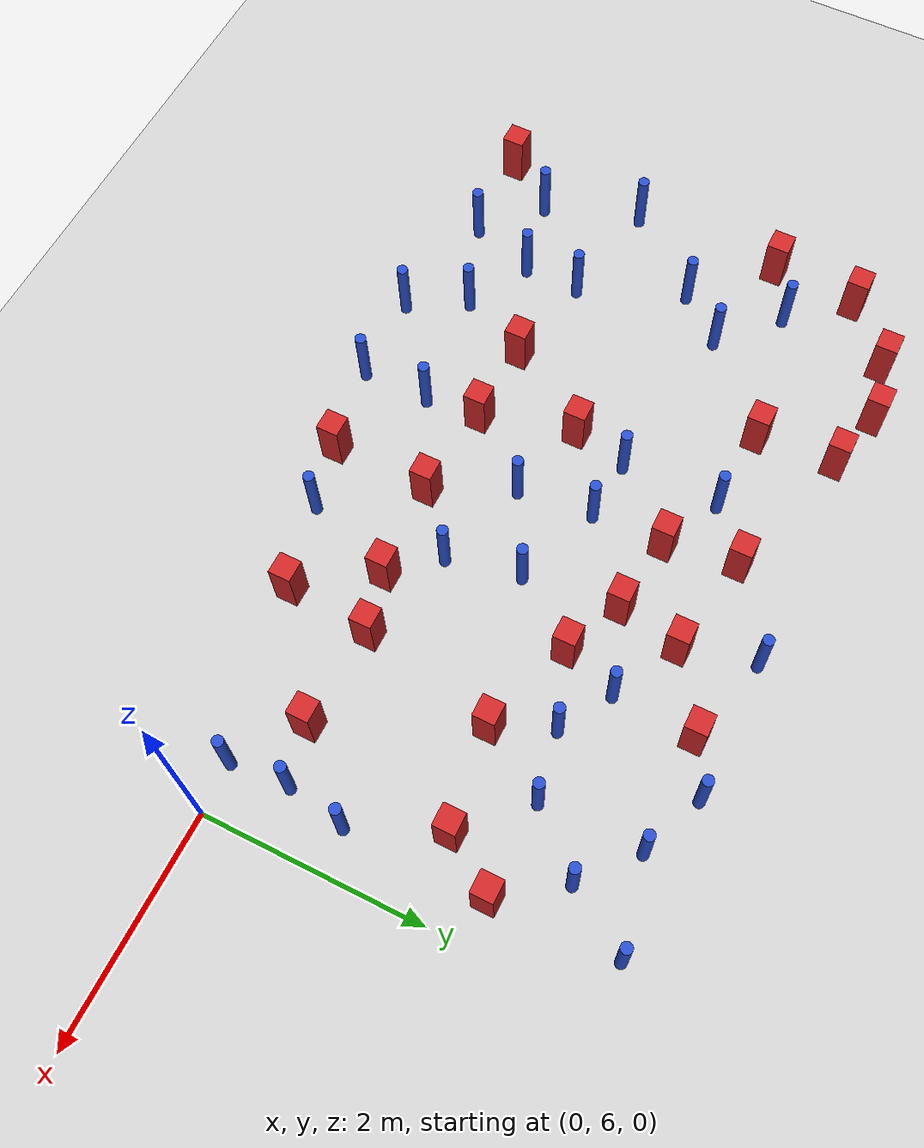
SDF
<sdf version="1.6">
 <world name="default">
  <model name="ground_plane">
   <static>1</static>
   <link name="link">
    <collision name="collision">
     <geometry><plane><normal>0 0 1</normal><size>100 100</size></plane></geometry>
     <surface><friction><ode><mu>100</mu><mu2>50</mu2></ode></friction></surface>
    </collision>
    <visual name="visual">
     <cast_shadows>0</cast_shadows>
     <geometry><plane><normal>0 0 1</normal><size>100 100</size></plane></geometry>
     <material>
      <ambient>1.0 1.0 1.0 1.0</ambient>
      <diffuse>0.8 0.8 0.8 1.0</diffuse>
      <specular>0.01 0.01 0.01 1.000000</specular>
     </material>
    </visual>
   </link>
  </model>
  <model name="square_post_obstacle6">
   <static>true</static>
   <pose>-3.72830438656 8.32323099162 1.91545236811e-07 -7.35059704564e-06 1.12565212e-07 2.39332434364e-05</pose>
   <link name="link">
    <pose>0 0 0.25 0 -0 0</pose>
    <inertial>
     <mass>100</mass>
     <inertia>
      <ixx>0.166667</ixx>
      <ixy>0</ixy>
      <ixz>0</ixz>
      <iyy>0.166667</iyy>
      <iyz>0</iyz>
      <izz>0.166667</izz>
     </inertia>
    </inertial>
    <collision name="collision"><geometry><box><size>.2 .2 .5</size></box></geometry></collision>
    <visual name="visual">
     <geometry><box><size>.2 .2 .5</size></box></geometry>
     <material>
      <script><name>Gazebo/Red</name><uri>file://media/materials/scripts/gazebo.material</uri></script>
     </material>
    </visual>
   </link>
  </model>
  <model name="pole_obstacle7">
   <static>true</static>
   <pose>-6.21380209291 7.48486006199 7.38925637345e-09 -8.47170692796e-08 1.24976764786e-08 -1.74513093032e-07</pose>
   <link name="link">
    <pose>0 0 0.3 0 -0 0</pose>
    <inertial>
     <mass>1</mass>
     <inertia><ixx>0.145833</ixx><ixy>0</ixy><ixz>0</ixz><iyy>0.145833</iyy><iyz>0</iyz><izz>0.125</izz></inertia>
    </inertial>
    <collision name="collision">
     <geometry><cylinder><radius>0.05</radius><length>.6</length></cylinder></geometry>
    </collision>
    <visual name="visual">
     <geometry><cylinder><radius>0.05</radius><length>.6</length></cylinder></geometry>
     <material>
      <script><name>Gazebo/Blue</name><uri>file://media/materials/scripts/gazebo.material</uri></script>
     </material>
    </visual>
   </link>
  </model>
  <model name="pole_obstacle9">
   <static>true</static>
   <pose>-5.82757588998 6.53122143702 7.38925637345e-09 -8.47170692796e-08 1.24976764786e-08 -1.74513093032e-07</pose>
   <link name="link">
    <pose>0 0 0.3 0 -0 0</pose>
    <inertial>
     <mass>1</mass>
     <inertia><ixx>0.145833</ixx><ixy>0</ixy><ixz>0</ixz><iyy>0.145833</iyy><iyz>0</iyz><izz>0.125</izz></inertia>
    </inertial>
    <collision name="collision">
     <geometry><cylinder><radius>0.05</radius><length>.6</length></cylinder></geometry>
    </collision>
    <visual name="visual">
     <geometry><cylinder><radius>0.05</radius><length>.6</length></cylinder></geometry>
     <material>
      <script><name>Gazebo/Blue</name><uri>file://media/materials/scripts/gazebo.material</uri></script>
     </material>
    </visual>
   </link>
  </model>
  <model name="square_post_obstacle17">
   <static>true</static>
   <pose>-2.2607761565 9.23892513766 1.91545236811e-07 -7.35059704564e-06 1.12565212e-07 2.39332434364e-05</pose>
   <link name="link">
    <pose>0 0 0.25 0 -0 0</pose>
    <inertial>
     <mass>100</mass>
     <inertia>
      <ixx>0.166667</ixx>
      <ixy>0</ixy>
      <ixz>0</ixz>
      <iyy>0.166667</iyy>
      <iyz>0</iyz>
      <izz>0.166667</izz>
     </inertia>
    </inertial>
    <collision name="collision"><geometry><box><size>.2 .2 .5</size></box></geometry></collision>
    <visual name="visual">
     <geometry><box><size>.2 .2 .5</size></box></geometry>
     <material>
      <script><name>Gazebo/Red</name><uri>file://media/materials/scripts/gazebo.material</uri></script>
     </material>
    </visual>
   </link>
  </model>
  <model name="square_post_obstacle18">
   <static>true</static>
   <pose>-0.710924107963 7.84707226629 1.91545236811e-07 -7.35059704564e-06 1.12565212e-07 2.39332434364e-05</pose>
   <link name="link">
    <pose>0 0 0.25 0 -0 0</pose>
    <inertial>
     <mass>100</mass>
     <inertia>
      <ixx>0.166667</ixx>
      <ixy>0</ixy>
      <ixz>0</ixz>
      <iyy>0.166667</iyy>
      <iyz>0</iyz>
      <izz>0.166667</izz>
     </inertia>
    </inertial>
    <collision name="collision"><geometry><box><size>.2 .2 .5</size></box></geometry></collision>
    <visual name="visual">
     <geometry><box><size>.2 .2 .5</size></box></geometry>
     <material>
      <script><name>Gazebo/Red</name><uri>file://media/materials/scripts/gazebo.material</uri></script>
     </material>
    </visual>
   </link>
  </model>
  <model name="square_post_obstacle22">
   <static>true</static>
   <pose>-4.94284263229 6.36715848857 1.91545236811e-07 -7.35059704564e-06 1.12565212e-07 2.39332434364e-05</pose>
   <link name="link">
    <pose>0 0 0.25 0 -0 0</pose>
    <inertial>
     <mass>100</mass>
     <inertia>
      <ixx>0.166667</ixx>
      <ixy>0</ixy>
      <ixz>0</ixz>
      <iyy>0.166667</iyy>
      <iyz>0</iyz>
      <izz>0.166667</izz>
     </inertia>
    </inertial>
    <collision name="collision"><geometry><box><size>.2 .2 .5</size></box></geometry></collision>
    <visual name="visual">
     <geometry><box><size>.2 .2 .5</size></box></geometry>
     <material>
      <script><name>Gazebo/Red</name><uri>file://media/materials/scripts/gazebo.material</uri></script>
     </material>
    </visual>
   </link>
  </model>
  <model name="square_post_obstacle25">
   <static>true</static>
   <pose>-6.91297665104 5.375971239 1.91545236811e-07 -7.35059704564e-06 1.12565212e-07 2.39332434364e-05</pose>
   <link name="link">
    <pose>0 0 0.25 0 -0 0</pose>
    <inertial>
     <mass>100</mass>
     <inertia>
      <ixx>0.166667</ixx>
      <ixy>0</ixy>
      <ixz>0</ixz>
      <iyy>0.166667</iyy>
      <iyz>0</iyz>
      <izz>0.166667</izz>
     </inertia>
    </inertial>
    <collision name="collision"><geometry><box><size>.2 .2 .5</size></box></geometry></collision>
    <visual name="visual">
     <geometry><box><size>.2 .2 .5</size></box></geometry>
     <material>
      <script><name>Gazebo/Red</name><uri>file://media/materials/scripts/gazebo.material</uri></script>
     </material>
    </visual>
   </link>
  </model>
  <model name="pole_obstacle20">
   <static>true</static>
   <pose>-1.81286273099 9.47754054023 7.38925637345e-09 -8.47170692798e-08 1.24976764881e-08 -1.74513093027e-07</pose>
   <link name="link">
    <pose>0 0 0.3 0 -0 0</pose>
    <inertial>
     <mass>1</mass>
     <inertia><ixx>0.145833</ixx><ixy>0</ixy><ixz>0</ixz><iyy>0.145833</iyy><iyz>0</iyz><izz>0.125</izz></inertia>
    </inertial>
    <collision name="collision">
     <geometry><cylinder><radius>0.05</radius><length>.6</length></cylinder></geometry>
    </collision>
    <visual name="visual">
     <geometry><cylinder><radius>0.05</radius><length>.6</length></cylinder></geometry>
     <material>
      <script><name>Gazebo/Blue</name><uri>file://media/materials/scripts/gazebo.material</uri></script>
     </material>
    </visual>
   </link>
  </model>
  <model name="pole_obstacle21">
   <static>true</static>
   <pose>-5.85196657375 7.90835530831 7.38925637345e-09 -8.47170692796e-08 1.24976764786e-08 -1.74513093032e-07</pose>
   <link name="link">
    <pose>0 0 0.3 0 -0 0</pose>
    <inertial>
     <mass>1</mass>
     <inertia><ixx>0.145833</ixx><ixy>0</ixy><ixz>0</ixz><iyy>0.145833</iyy><iyz>0</iyz><izz>0.125</izz></inertia>
    </inertial>
    <collision name="collision">
     <geometry><cylinder><radius>0.05</radius><length>.6</length></cylinder></geometry>
    </collision>
    <visual name="visual">
     <geometry><cylinder><radius>0.05</radius><length>.6</length></cylinder></geometry>
     <material>
      <script><name>Gazebo/Blue</name><uri>file://media/materials/scripts/gazebo.material</uri></script>
     </material>
    </visual>
   </link>
  </model>
  <model name="pole_obstacle26">
   <static>true</static>
   <pose>-2.30559572636 8.4978859377 7.38925637345e-09 -8.47170692793e-08 1.24976764408e-08 -1.74513093041e-07</pose>
   <link name="link">
    <pose>0 0 0.3 0 -0 0</pose>
    <inertial>
     <mass>1</mass>
     <inertia><ixx>0.145833</ixx><ixy>0</ixy><ixz>0</ixz><iyy>0.145833</iyy><iyz>0</iyz><izz>0.125</izz></inertia>
    </inertial>
    <collision name="collision">
     <geometry><cylinder><radius>0.05</radius><length>.6</length></cylinder></geometry>
    </collision>
    <visual name="visual">
     <geometry><cylinder><radius>0.05</radius><length>.6</length></cylinder></geometry>
     <material>
      <script><name>Gazebo/Blue</name><uri>file://media/materials/scripts/gazebo.material</uri></script>
     </material>
    </visual>
   </link>
  </model>
  <model name="pole_obstacle33">
   <static>true</static>
   <pose>-3.65737740677 6.97716164543 7.38925637345e-09 -8.47170692794e-08 1.24976764468e-08 -1.7451309304e-07</pose>
   <link name="link">
    <pose>0 0 0.3 0 -0 0</pose>
    <inertial>
     <mass>1</mass>
     <inertia><ixx>0.145833</ixx><ixy>0</ixy><ixz>0</ixz><iyy>0.145833</iyy><iyz>0</iyz><izz>0.125</izz></inertia>
    </inertial>
    <collision name="collision">
     <geometry><cylinder><radius>0.05</radius><length>.6</length></cylinder></geometry>
    </collision>
    <visual name="visual">
     <geometry><cylinder><radius>0.05</radius><length>.6</length></cylinder></geometry>
     <material>
      <script><name>Gazebo/Blue</name><uri>file://media/materials/scripts/gazebo.material</uri></script>
     </material>
    </visual>
   </link>
  </model>
  <model name="pole_obstacle41">
   <static>true</static>
   <pose>-6.8476898165 6.72044796362 7.38925637345e-09 -8.47170692796e-08 1.24976764786e-08 -1.74513093032e-07</pose>
   <link name="link">
    <pose>0 0 0.3 0 -0 0</pose>
    <inertial>
     <mass>1</mass>
     <inertia><ixx>0.145833</ixx><ixy>0</ixy><ixz>0</ixz><iyy>0.145833</iyy><iyz>0</iyz><izz>0.125</izz></inertia>
    </inertial>
    <collision name="collision">
     <geometry><cylinder><radius>0.05</radius><length>.6</length></cylinder></geometry>
    </collision>
    <visual name="visual">
     <geometry><cylinder><radius>0.05</radius><length>.6</length></cylinder></geometry>
     <material>
      <script><name>Gazebo/Blue</name><uri>file://media/materials/scripts/gazebo.material</uri></script>
     </material>
    </visual>
   </link>
  </model>
  <model name="square_post_obstacle50">
   <static>true</static>
   <pose>-1.61784807252 7.72485938221 1.91545236811e-07 -7.35059704564e-06 1.12565212e-07 2.39332434364e-05</pose>
   <link name="link">
    <pose>0 0 0.25 0 -0 0</pose>
    <inertial>
     <mass>100</mass>
     <inertia>
      <ixx>0.166667</ixx>
      <ixy>0</ixy>
      <ixz>0</ixz>
      <iyy>0.166667</iyy>
      <iyz>0</iyz>
      <izz>0.166667</izz>
     </inertia>
    </inertial>
    <collision name="collision"><geometry><box><size>.2 .2 .5</size></box></geometry></collision>
    <visual name="visual">
     <geometry><box><size>.2 .2 .5</size></box></geometry>
     <material>
      <script><name>Gazebo/Red</name><uri>file://media/materials/scripts/gazebo.material</uri></script>
     </material>
    </visual>
   </link>
  </model>
  <model name="square_post_obstacle58">
   <static>true</static>
   <pose>-5.69468951667 9.49589718197 1.91545236811e-07 -7.35059704564e-06 1.12565212e-07 2.39332434364e-05</pose>
   <link name="link">
    <pose>0 0 0.25 0 -0 0</pose>
    <inertial>
     <mass>100</mass>
     <inertia>
      <ixx>0.166667</ixx>
      <ixy>0</ixy>
      <ixz>0</ixz>
      <iyy>0.166667</iyy>
      <iyz>0</iyz>
      <izz>0.166667</izz>
     </inertia>
    </inertial>
    <collision name="collision"><geometry><box><size>.2 .2 .5</size></box></geometry></collision>
    <visual name="visual">
     <geometry><box><size>.2 .2 .5</size></box></geometry>
     <material>
      <script><name>Gazebo/Red</name><uri>file://media/materials/scripts/gazebo.material</uri></script>
     </material>
    </visual>
   </link>
  </model>
  <model name="pole_obstacle57">
   <static>true</static>
   <pose>-4.29278978772 8.59121332 7.38925637345e-09 -8.471706928e-08 1.24976765081e-08 -1.74513093015e-07</pose>
   <link name="link">
    <pose>0 0 0.3 0 -0 0</pose>
    <inertial>
     <mass>1</mass>
     <inertia><ixx>0.145833</ixx><ixy>0</ixy><ixz>0</ixz><iyy>0.145833</iyy><iyz>0</iyz><izz>0.125</izz></inertia>
    </inertial>
    <collision name="collision">
     <geometry><cylinder><radius>0.05</radius><length>.6</length></cylinder></geometry>
    </collision>
    <visual name="visual">
     <geometry><cylinder><radius>0.05</radius><length>.6</length></cylinder></geometry>
     <material>
      <script><name>Gazebo/Blue</name><uri>file://media/materials/scripts/gazebo.material</uri></script>
     </material>
    </visual>
   </link>
  </model>
  <model name="square_post_obstacle66">
   <static>true</static>
   <pose>-6.79014950941 8.90938045796 1.91545236811e-07 -7.35059704564e-06 1.12565212e-07 2.39332434364e-05</pose>
   <link name="link">
    <pose>0 0 0.25 0 -0 0</pose>
    <inertial>
     <mass>100</mass>
     <inertia>
      <ixx>0.166667</ixx>
      <ixy>0</ixy>
      <ixz>0</ixz>
      <iyy>0.166667</iyy>
      <iyz>0</iyz>
      <izz>0.166667</izz>
     </inertia>
    </inertial>
    <collision name="collision"><geometry><box><size>.2 .2 .5</size></box></geometry></collision>
    <visual name="visual">
     <geometry><box><size>.2 .2 .5</size></box></geometry>
     <material>
      <script><name>Gazebo/Red</name><uri>file://media/materials/scripts/gazebo.material</uri></script>
     </material>
    </visual>
   </link>
  </model>
  <model name="pole_obstacle75">
   <static>true</static>
   <pose>-4.9664659404 5.17890553749 7.38925637345e-09 -8.47170692796e-08 1.24976764786e-08 -1.74513093032e-07</pose>
   <link name="link">
    <pose>0 0 0.3 0 -0 0</pose>
    <inertial>
     <mass>1</mass>
     <inertia><ixx>0.145833</ixx><ixy>0</ixy><ixz>0</ixz><iyy>0.145833</iyy><iyz>0</iyz><izz>0.125</izz></inertia>
    </inertial>
    <collision name="collision">
     <geometry><cylinder><radius>0.05</radius><length>.6</length></cylinder></geometry>
    </collision>
    <visual name="visual">
     <geometry><cylinder><radius>0.05</radius><length>.6</length></cylinder></geometry>
     <material>
      <script><name>Gazebo/Blue</name><uri>file://media/materials/scripts/gazebo.material</uri></script>
     </material>
    </visual>
   </link>
  </model>
  <model name="pole_obstacle76">
   <static>true</static>
   <pose>-4.28819400625 7.6971586454 7.38925637345e-09 -8.47170692796e-08 1.24976764786e-08 -1.74513093032e-07</pose>
   <link name="link">
    <pose>0 0 0.3 0 -0 0</pose>
    <inertial>
     <mass>1</mass>
     <inertia><ixx>0.145833</ixx><ixy>0</ixy><ixz>0</ixz><iyy>0.145833</iyy><iyz>0</iyz><izz>0.125</izz></inertia>
    </inertial>
    <collision name="collision">
     <geometry><cylinder><radius>0.05</radius><length>.6</length></cylinder></geometry>
    </collision>
    <visual name="visual">
     <geometry><cylinder><radius>0.05</radius><length>.6</length></cylinder></geometry>
     <material>
      <script><name>Gazebo/Blue</name><uri>file://media/materials/scripts/gazebo.material</uri></script>
     </material>
    </visual>
   </link>
  </model>
  <model name="pole_obstacle79">
   <static>true</static>
   <pose>-5.24844016726 5.70197161337 7.38925637345e-09 -8.47170692796e-08 1.24976764786e-08 -1.74513093032e-07</pose>
   <link name="link">
    <pose>0 0 0.3 0 -0 0</pose>
    <inertial>
     <mass>1</mass>
     <inertia><ixx>0.145833</ixx><ixy>0</ixy><ixz>0</ixz><iyy>0.145833</iyy><iyz>0</iyz><izz>0.125</izz></inertia>
    </inertial>
    <collision name="collision">
     <geometry><cylinder><radius>0.05</radius><length>.6</length></cylinder></geometry>
    </collision>
    <visual name="visual">
     <geometry><cylinder><radius>0.05</radius><length>.6</length></cylinder></geometry>
     <material>
      <script><name>Gazebo/Blue</name><uri>file://media/materials/scripts/gazebo.material</uri></script>
     </material>
    </visual>
   </link>
  </model>
  <model name="pole_obstacle87">
   <static>true</static>
   <pose>-6.5630985155 5.84328824949 7.38925637345e-09 -8.47170692796e-08 1.24976764786e-08 -1.74513093032e-07</pose>
   <link name="link">
    <pose>0 0 0.3 0 -0 0</pose>
    <inertial>
     <mass>1</mass>
     <inertia><ixx>0.145833</ixx><ixy>0</ixy><ixz>0</ixz><iyy>0.145833</iyy><iyz>0</iyz><izz>0.125</izz></inertia>
    </inertial>
    <collision name="collision">
     <geometry><cylinder><radius>0.05</radius><length>.6</length></cylinder></geometry>
    </collision>
    <visual name="visual">
     <geometry><cylinder><radius>0.05</radius><length>.6</length></cylinder></geometry>
     <material>
      <script><name>Gazebo/Blue</name><uri>file://media/materials/scripts/gazebo.material</uri></script>
     </material>
    </visual>
   </link>
  </model>
  <model name="square_post_obstacle82">
   <static>true</static>
   <pose>-2.4383542352 6.32855951737 1.91545236811e-07 -7.35059704564e-06 1.12565212e-07 2.39332434364e-05</pose>
   <link name="link">
    <pose>0 0 0.25 0 -0 0</pose>
    <inertial>
     <mass>100</mass>
     <inertia>
      <ixx>0.166667</ixx>
      <ixy>0</ixy>
      <ixz>0</ixz>
      <iyy>0.166667</iyy>
      <iyz>0</iyz>
      <izz>0.166667</izz>
     </inertia>
    </inertial>
    <collision name="collision"><geometry><box><size>.2 .2 .5</size></box></geometry></collision>
    <visual name="visual">
     <geometry><box><size>.2 .2 .5</size></box></geometry>
     <material>
      <script><name>Gazebo/Red</name><uri>file://media/materials/scripts/gazebo.material</uri></script>
     </material>
    </visual>
   </link>
  </model>
  <model name="square_post_obstacle92">
   <static>true</static>
   <pose>-3.31496978802 6.27164837636 1.91545236811e-07 -7.35059704564e-06 1.12565212e-07 2.39332434364e-05</pose>
   <link name="link">
    <pose>0 0 0.25 0 -0 0</pose>
    <inertial>
     <mass>100</mass>
     <inertia>
      <ixx>0.166667</ixx>
      <ixy>0</ixy>
      <ixz>0</ixz>
      <iyy>0.166667</iyy>
      <iyz>0</iyz>
      <izz>0.166667</izz>
     </inertia>
    </inertial>
    <collision name="collision"><geometry><box><size>.2 .2 .5</size></box></geometry></collision>
    <visual name="visual">
     <geometry><box><size>.2 .2 .5</size></box></geometry>
     <material>
      <script><name>Gazebo/Red</name><uri>file://media/materials/scripts/gazebo.material</uri></script>
     </material>
    </visual>
   </link>
  </model>
  <model name="pole_obstacle110">
   <static>true</static>
   <pose>-1.23637105233 9.24878941819 7.38925637345e-09 -8.47170692798e-08 1.24976764881e-08 -1.74513093027e-07</pose>
   <link name="link">
    <pose>0 0 0.3 0 -0 0</pose>
    <inertial>
     <mass>1</mass>
     <inertia><ixx>0.145833</ixx><ixy>0</ixy><ixz>0</ixz><iyy>0.145833</iyy><iyz>0</iyz><izz>0.125</izz></inertia>
    </inertial>
    <collision name="collision">
     <geometry><cylinder><radius>0.05</radius><length>.6</length></cylinder></geometry>
    </collision>
    <visual name="visual">
     <geometry><cylinder><radius>0.05</radius><length>.6</length></cylinder></geometry>
     <material>
      <script><name>Gazebo/Blue</name><uri>file://media/materials/scripts/gazebo.material</uri></script>
     </material>
    </visual>
   </link>
  </model>
  <model name="square_post_obstacle102">
   <static>true</static>
   <pose>-3.34273186363 5.35794276062 1.91545236811e-07 -7.35059704564e-06 1.12565212e-07 2.39332434364e-05</pose>
   <link name="link">
    <pose>0 0 0.25 0 -0 0</pose>
    <inertial>
     <mass>100</mass>
     <inertia>
      <ixx>0.166667</ixx>
      <ixy>0</ixy>
      <ixz>0</ixz>
      <iyy>0.166667</iyy>
      <iyz>0</iyz>
      <izz>0.166667</izz>
     </inertia>
    </inertial>
    <collision name="collision"><geometry><box><size>.2 .2 .5</size></box></geometry></collision>
    <visual name="visual">
     <geometry><box><size>.2 .2 .5</size></box></geometry>
     <material>
      <script><name>Gazebo/Red</name><uri>file://media/materials/scripts/gazebo.material</uri></script>
     </material>
    </visual>
   </link>
  </model>
  <model name="square_post_obstacle107">
   <static>true</static>
   <pose>-1.90486546367 6.47131169436 1.91545236811e-07 -7.35059704564e-06 1.12565212e-07 2.39332434364e-05</pose>
   <link name="link">
    <pose>0 0 0.25 0 -0 0</pose>
    <inertial>
     <mass>100</mass>
     <inertia>
      <ixx>0.166667</ixx>
      <ixy>0</ixy>
      <ixz>0</ixz>
      <iyy>0.166667</iyy>
      <iyz>0</iyz>
      <izz>0.166667</izz>
     </inertia>
    </inertial>
    <collision name="collision"><geometry><box><size>.2 .2 .5</size></box></geometry></collision>
    <visual name="visual">
     <geometry><box><size>.2 .2 .5</size></box></geometry>
     <material>
      <script><name>Gazebo/Red</name><uri>file://media/materials/scripts/gazebo.material</uri></script>
     </material>
    </visual>
   </link>
  </model>
  <model name="pole_obstacle119">
   <static>true</static>
   <pose>-0.445999116322 6.00356607194 7.38925637345e-09 -8.471706928e-08 1.24976765079e-08 -1.74513093015e-07</pose>
   <link name="link">
    <pose>0 0 0.3 0 -0 0</pose>
    <inertial>
     <mass>1</mass>
     <inertia><ixx>0.145833</ixx><ixy>0</ixy><ixz>0</ixz><iyy>0.145833</iyy><iyz>0</iyz><izz>0.125</izz></inertia>
    </inertial>
    <collision name="collision">
     <geometry><cylinder><radius>0.05</radius><length>.6</length></cylinder></geometry>
    </collision>
    <visual name="visual">
     <geometry><cylinder><radius>0.05</radius><length>.6</length></cylinder></geometry>
     <material>
      <script><name>Gazebo/Blue</name><uri>file://media/materials/scripts/gazebo.material</uri></script>
     </material>
    </visual>
   </link>
  </model>
  <model name="square_post_obstacle108">
   <static>true</static>
   <pose>-6.84902430021 8.1106531027 1.91545236811e-07 -7.35059704564e-06 1.12565212e-07 2.39332434364e-05</pose>
   <link name="link">
    <pose>0 0 0.25 0 -0 0</pose>
    <inertial>
     <mass>100</mass>
     <inertia>
      <ixx>0.166667</ixx>
      <ixy>0</ixy>
      <ixz>0</ixz>
      <iyy>0.166667</iyy>
      <iyz>0</iyz>
      <izz>0.166667</izz>
     </inertia>
    </inertial>
    <collision name="collision"><geometry><box><size>.2 .2 .5</size></box></geometry></collision>
    <visual name="visual">
     <geometry><box><size>.2 .2 .5</size></box></geometry>
     <material>
      <script><name>Gazebo/Red</name><uri>file://media/materials/scripts/gazebo.material</uri></script>
     </material>
    </visual>
   </link>
  </model>
  <model name="pole_obstacle122">
   <static>true</static>
   <pose>-2.93700445325 7.37391985507 7.38925637345e-09 -8.47170692798e-08 1.24976765033e-08 -1.74513093019e-07</pose>
   <link name="link">
    <pose>0 0 0.3 0 -0 0</pose>
    <inertial>
     <mass>1</mass>
     <inertia><ixx>0.145833</ixx><ixy>0</ixy><ixz>0</ixz><iyy>0.145833</iyy><iyz>0</iyz><izz>0.125</izz></inertia>
    </inertial>
    <collision name="collision">
     <geometry><cylinder><radius>0.05</radius><length>.6</length></cylinder></geometry>
    </collision>
    <visual name="visual">
     <geometry><cylinder><radius>0.05</radius><length>.6</length></cylinder></geometry>
     <material>
      <script><name>Gazebo/Blue</name><uri>file://media/materials/scripts/gazebo.material</uri></script>
     </material>
    </visual>
   </link>
  </model>
  <model name="pole_obstacle125">
   <static>true</static>
   <pose>-5.83608759632 6.00848270349 7.38925637345e-09 -8.47170692796e-08 1.24976764786e-08 -1.74513093032e-07</pose>
   <link name="link">
    <pose>0 0 0.3 0 -0 0</pose>
    <inertial>
     <mass>1</mass>
     <inertia><ixx>0.145833</ixx><ixy>0</ixy><ixz>0</ixz><iyy>0.145833</iyy><iyz>0</iyz><izz>0.125</izz></inertia>
    </inertial>
    <collision name="collision">
     <geometry><cylinder><radius>0.05</radius><length>.6</length></cylinder></geometry>
    </collision>
    <visual name="visual">
     <geometry><cylinder><radius>0.05</radius><length>.6</length></cylinder></geometry>
     <material>
      <script><name>Gazebo/Blue</name><uri>file://media/materials/scripts/gazebo.material</uri></script>
     </material>
    </visual>
   </link>
  </model>
  <model name="pole_obstacle127">
   <static>true</static>
   <pose>-0.416088919548 9.43137399025 7.38925637345e-09 -8.47170692796e-08 1.24976764724e-08 -1.74513093036e-07</pose>
   <link name="link">
    <pose>0 0 0.3 0 -0 0</pose>
    <inertial>
     <mass>1</mass>
     <inertia><ixx>0.145833</ixx><ixy>0</ixy><ixz>0</ixz><iyy>0.145833</iyy><iyz>0</iyz><izz>0.125</izz></inertia>
    </inertial>
    <collision name="collision">
     <geometry><cylinder><radius>0.05</radius><length>.6</length></cylinder></geometry>
    </collision>
    <visual name="visual">
     <geometry><cylinder><radius>0.05</radius><length>.6</length></cylinder></geometry>
     <material>
      <script><name>Gazebo/Blue</name><uri>file://media/materials/scripts/gazebo.material</uri></script>
     </material>
    </visual>
   </link>
  </model>
  <model name="pole_obstacle131">
   <static>true</static>
   <pose>-3.73282521343 7.66255734825 7.38925637345e-09 -8.47170692798e-08 1.24976765033e-08 -1.74513093019e-07</pose>
   <link name="link">
    <pose>0 0 0.3 0 -0 0</pose>
    <inertial>
     <mass>1</mass>
     <inertia><ixx>0.145833</ixx><ixy>0</ixy><ixz>0</ixz><iyy>0.145833</iyy><iyz>0</iyz><izz>0.125</izz></inertia>
    </inertial>
    <collision name="collision">
     <geometry><cylinder><radius>0.05</radius><length>.6</length></cylinder></geometry>
    </collision>
    <visual name="visual">
     <geometry><cylinder><radius>0.05</radius><length>.6</length></cylinder></geometry>
     <material>
      <script><name>Gazebo/Blue</name><uri>file://media/materials/scripts/gazebo.material</uri></script>
     </material>
    </visual>
   </link>
  </model>
  <model name="pole_obstacle138">
   <static>true</static>
   <pose>-2.80005457852 6.70867758499 7.38925637345e-09 -8.47170692798e-08 1.24976765033e-08 -1.74513093019e-07</pose>
   <link name="link">
    <pose>0 0 0.3 0 -0 0</pose>
    <inertial>
     <mass>1</mass>
     <inertia><ixx>0.145833</ixx><ixy>0</ixy><ixz>0</ixz><iyy>0.145833</iyy><iyz>0</iyz><izz>0.125</izz></inertia>
    </inertial>
    <collision name="collision">
     <geometry><cylinder><radius>0.05</radius><length>.6</length></cylinder></geometry>
    </collision>
    <visual name="visual">
     <geometry><cylinder><radius>0.05</radius><length>.6</length></cylinder></geometry>
     <material>
      <script><name>Gazebo/Blue</name><uri>file://media/materials/scripts/gazebo.material</uri></script>
     </material>
    </visual>
   </link>
  </model>
  <model name="square_post_obstacle123">
   <static>true</static>
   <pose>-6.2526900177 9.37073300393 1.91545236811e-07 -7.35059704564e-06 1.12565212e-07 2.39332434364e-05</pose>
   <link name="link">
    <pose>0 0 0.25 0 -0 0</pose>
    <inertial>
     <mass>100</mass>
     <inertia>
      <ixx>0.166667</ixx>
      <ixy>0</ixy>
      <ixz>0</ixz>
      <iyy>0.166667</iyy>
      <iyz>0</iyz>
      <izz>0.166667</izz>
     </inertia>
    </inertial>
    <collision name="collision"><geometry><box><size>.2 .2 .5</size></box></geometry></collision>
    <visual name="visual">
     <geometry><box><size>.2 .2 .5</size></box></geometry>
     <material>
      <script><name>Gazebo/Red</name><uri>file://media/materials/scripts/gazebo.material</uri></script>
     </material>
    </visual>
   </link>
  </model>
  <model name="pole_obstacle144">
   <static>true</static>
   <pose>-6.05075520629 5.39231705375 7.38925637345e-09 -8.47170692796e-08 1.24976764786e-08 -1.74513093032e-07</pose>
   <link name="link">
    <pose>0 0 0.3 0 -0 0</pose>
    <inertial>
     <mass>1</mass>
     <inertia><ixx>0.145833</ixx><ixy>0</ixy><ixz>0</ixz><iyy>0.145833</iyy><iyz>0</iyz><izz>0.125</izz></inertia>
    </inertial>
    <collision name="collision">
     <geometry><cylinder><radius>0.05</radius><length>.6</length></cylinder></geometry>
    </collision>
    <visual name="visual">
     <geometry><cylinder><radius>0.05</radius><length>.6</length></cylinder></geometry>
     <material>
      <script><name>Gazebo/Blue</name><uri>file://media/materials/scripts/gazebo.material</uri></script>
     </material>
    </visual>
   </link>
  </model>
  <model name="square_post_obstacle134">
   <static>true</static>
   <pose>-5.06623237733 8.63534132139 1.91545236811e-07 -7.35059704564e-06 1.12565212e-07 2.39332434364e-05</pose>
   <link name="link">
    <pose>0 0 0.25 0 -0 0</pose>
    <inertial>
     <mass>100</mass>
     <inertia>
      <ixx>0.166667</ixx>
      <ixy>0</ixy>
      <ixz>0</ixz>
      <iyy>0.166667</iyy>
      <iyz>0</iyz>
      <izz>0.166667</izz>
     </inertia>
    </inertial>
    <collision name="collision"><geometry><box><size>.2 .2 .5</size></box></geometry></collision>
    <visual name="visual">
     <geometry><box><size>.2 .2 .5</size></box></geometry>
     <material>
      <script><name>Gazebo/Red</name><uri>file://media/materials/scripts/gazebo.material</uri></script>
     </material>
    </visual>
   </link>
  </model>
  <model name="pole_obstacle147">
   <static>true</static>
   <pose>-3.07705734118 9.46352921961 7.38925637345e-09 -8.47170692793e-08 1.24976764408e-08 -1.74513093041e-07</pose>
   <link name="link">
    <pose>0 0 0.3 0 -0 0</pose>
    <inertial>
     <mass>1</mass>
     <inertia><ixx>0.145833</ixx><ixy>0</ixy><ixz>0</ixz><iyy>0.145833</iyy><iyz>0</iyz><izz>0.125</izz></inertia>
    </inertial>
    <collision name="collision">
     <geometry><cylinder><radius>0.05</radius><length>.6</length></cylinder></geometry>
    </collision>
    <visual name="visual">
     <geometry><cylinder><radius>0.05</radius><length>.6</length></cylinder></geometry>
     <material>
      <script><name>Gazebo/Blue</name><uri>file://media/materials/scripts/gazebo.material</uri></script>
     </material>
    </visual>
   </link>
  </model>
  <model name="pole_obstacle148">
   <static>true</static>
   <pose>-0.38131365333 7.06573067288 7.38925637345e-09 -8.471706928e-08 1.24976765079e-08 -1.74513093015e-07</pose>
   <link name="link">
    <pose>0 0 0.3 0 -0 0</pose>
    <inertial>
     <mass>1</mass>
     <inertia><ixx>0.145833</ixx><ixy>0</ixy><ixz>0</ixz><iyy>0.145833</iyy><iyz>0</iyz><izz>0.125</izz></inertia>
    </inertial>
    <collision name="collision">
     <geometry><cylinder><radius>0.05</radius><length>.6</length></cylinder></geometry>
    </collision>
    <visual name="visual">
     <geometry><cylinder><radius>0.05</radius><length>.6</length></cylinder></geometry>
     <material>
      <script><name>Gazebo/Blue</name><uri>file://media/materials/scripts/gazebo.material</uri></script>
     </material>
    </visual>
   </link>
  </model>
  <model name="square_post_obstacle138">
   <static>true</static>
   <pose>-0.388289073463 8.32897347756 1.91545236811e-07 -7.35059704564e-06 1.12565212e-07 2.39332434364e-05</pose>
   <link name="link">
    <pose>0 0 0.25 0 -0 0</pose>
    <inertial>
     <mass>100</mass>
     <inertia>
      <ixx>0.166667</ixx>
      <ixy>0</ixy>
      <ixz>0</ixz>
      <iyy>0.166667</iyy>
      <iyz>0</iyz>
      <izz>0.166667</izz>
     </inertia>
    </inertial>
    <collision name="collision"><geometry><box><size>.2 .2 .5</size></box></geometry></collision>
    <visual name="visual">
     <geometry><box><size>.2 .2 .5</size></box></geometry>
     <material>
      <script><name>Gazebo/Red</name><uri>file://media/materials/scripts/gazebo.material</uri></script>
     </material>
    </visual>
   </link>
  </model>
  <model name="square_post_obstacle143">
   <static>true</static>
   <pose>-1.9781538935 5.68478312915 1.91545236811e-07 -7.35059704564e-06 1.12565212e-07 2.39332434364e-05</pose>
   <link name="link">
    <pose>0 0 0.25 0 -0 0</pose>
    <inertial>
     <mass>100</mass>
     <inertia>
      <ixx>0.166667</ixx>
      <ixy>0</ixy>
      <ixz>0</ixz>
      <iyy>0.166667</iyy>
      <iyz>0</iyz>
      <izz>0.166667</izz>
     </inertia>
    </inertial>
    <collision name="collision"><geometry><box><size>.2 .2 .5</size></box></geometry></collision>
    <visual name="visual">
     <geometry><box><size>.2 .2 .5</size></box></geometry>
     <material>
      <script><name>Gazebo/Red</name><uri>file://media/materials/scripts/gazebo.material</uri></script>
     </material>
    </visual>
   </link>
  </model>
  <model name="square_post_obstacle155">
   <static>true</static>
   <pose>-3.83300456342 8.97290222693 1.91545236811e-07 -7.35059704564e-06 1.12565212e-07 2.39332434364e-05</pose>
   <link name="link">
    <pose>0 0 0.25 0 -0 0</pose>
    <inertial>
     <mass>100</mass>
     <inertia>
      <ixx>0.166667</ixx>
      <ixy>0</ixy>
      <ixz>0</ixz>
      <iyy>0.166667</iyy>
      <iyz>0</iyz>
      <izz>0.166667</izz>
     </inertia>
    </inertial>
    <collision name="collision"><geometry><box><size>.2 .2 .5</size></box></geometry></collision>
    <visual name="visual">
     <geometry><box><size>.2 .2 .5</size></box></geometry>
     <material>
      <script><name>Gazebo/Red</name><uri>file://media/materials/scripts/gazebo.material</uri></script>
     </material>
    </visual>
   </link>
  </model>
  <model name="square_post_obstacle162">
   <static>true</static>
   <pose>-2.48899511034 8.00340448347 1.91545236811e-07 -7.35059704564e-06 1.12565212e-07 2.39332434364e-05</pose>
   <link name="link">
    <pose>0 0 0.25 0 -0 0</pose>
    <inertial>
     <mass>100</mass>
     <inertia>
      <ixx>0.166667</ixx>
      <ixy>0</ixy>
      <ixz>0</ixz>
      <iyy>0.166667</iyy>
      <iyz>0</iyz>
      <izz>0.166667</izz>
     </inertia>
    </inertial>
    <collision name="collision"><geometry><box><size>.2 .2 .5</size></box></geometry></collision>
    <visual name="visual">
     <geometry><box><size>.2 .2 .5</size></box></geometry>
     <material>
      <script><name>Gazebo/Red</name><uri>file://media/materials/scripts/gazebo.material</uri></script>
     </material>
    </visual>
   </link>
  </model>
  <model name="square_post_obstacle166">
   <static>true</static>
   <pose>-4.17732775172 6.34612189173 1.91545236811e-07 -7.35059704564e-06 1.12565212e-07 2.39332434364e-05</pose>
   <link name="link">
    <pose>0 0 0.25 0 -0 0</pose>
    <inertial>
     <mass>100</mass>
     <inertia>
      <ixx>0.166667</ixx>
      <ixy>0</ixy>
      <ixz>0</ixz>
      <iyy>0.166667</iyy>
      <iyz>0</iyz>
      <izz>0.166667</izz>
     </inertia>
    </inertial>
    <collision name="collision"><geometry><box><size>.2 .2 .5</size></box></geometry></collision>
    <visual name="visual">
     <geometry><box><size>.2 .2 .5</size></box></geometry>
     <material>
      <script><name>Gazebo/Red</name><uri>file://media/materials/scripts/gazebo.material</uri></script>
     </material>
    </visual>
   </link>
  </model>
  <model name="square_post_obstacle177">
   <static>true</static>
   <pose>-4.41390436343 7.1928965993 1.91545236811e-07 -7.35059704564e-06 1.12565212e-07 2.39332434364e-05</pose>
   <link name="link">
    <pose>0 0 0.25 0 -0 0</pose>
    <inertial>
     <mass>100</mass>
     <inertia>
      <ixx>0.166667</ixx>
      <ixy>0</ixy>
      <ixz>0</ixz>
      <iyy>0.166667</iyy>
      <iyz>0</iyz>
      <izz>0.166667</izz>
     </inertia>
    </inertial>
    <collision name="collision"><geometry><box><size>.2 .2 .5</size></box></geometry></collision>
    <visual name="visual">
     <geometry><box><size>.2 .2 .5</size></box></geometry>
     <material>
      <script><name>Gazebo/Red</name><uri>file://media/materials/scripts/gazebo.material</uri></script>
     </material>
    </visual>
   </link>
  </model>
  <model name="pole_obstacle189">
   <static>true</static>
   <pose>-4.14983807061 5.20077335392 7.38925637345e-09 -8.47170692796e-08 1.24976764786e-08 -1.74513093032e-07</pose>
   <link name="link">
    <pose>0 0 0.3 0 -0 0</pose>
    <inertial>
     <mass>1</mass>
     <inertia><ixx>0.145833</ixx><ixy>0</ixy><ixz>0</ixz><iyy>0.145833</iyy><iyz>0</iyz><izz>0.125</izz></inertia>
    </inertial>
    <collision name="collision">
     <geometry><cylinder><radius>0.05</radius><length>.6</length></cylinder></geometry>
    </collision>
    <visual name="visual">
     <geometry><cylinder><radius>0.05</radius><length>.6</length></cylinder></geometry>
     <material>
      <script><name>Gazebo/Blue</name><uri>file://media/materials/scripts/gazebo.material</uri></script>
     </material>
    </visual>
   </link>
  </model>
  <model name="square_post_obstacle182">
   <static>true</static>
   <pose>-3.03141618141 8.23625229261 1.91545236811e-07 -7.35059704564e-06 1.12565212e-07 2.39332434364e-05</pose>
   <link name="link">
    <pose>0 0 0.25 0 -0 0</pose>
    <inertial>
     <mass>100</mass>
     <inertia>
      <ixx>0.166667</ixx>
      <ixy>0</ixy>
      <ixz>0</ixz>
      <iyy>0.166667</iyy>
      <iyz>0</iyz>
      <izz>0.166667</izz>
     </inertia>
    </inertial>
    <collision name="collision"><geometry><box><size>.2 .2 .5</size></box></geometry></collision>
    <visual name="visual">
     <geometry><box><size>.2 .2 .5</size></box></geometry>
     <material>
      <script><name>Gazebo/Red</name><uri>file://media/materials/scripts/gazebo.material</uri></script>
     </material>
    </visual>
   </link>
  </model>
  <model name="pole_obstacle192">
   <static>true</static>
   <pose>-1.83998514526 8.22637615022 7.38925637345e-09 -8.47170692798e-08 1.24976764881e-08 -1.74513093027e-07</pose>
   <link name="link">
    <pose>0 0 0.3 0 -0 0</pose>
    <inertial>
     <mass>1</mass>
     <inertia><ixx>0.145833</ixx><ixy>0</ixy><ixz>0</ixz><iyy>0.145833</iyy><iyz>0</iyz><izz>0.125</izz></inertia>
    </inertial>
    <collision name="collision">
     <geometry><cylinder><radius>0.05</radius><length>.6</length></cylinder></geometry>
    </collision>
    <visual name="visual">
     <geometry><cylinder><radius>0.05</radius><length>.6</length></cylinder></geometry>
     <material>
      <script><name>Gazebo/Blue</name><uri>file://media/materials/scripts/gazebo.material</uri></script>
     </material>
    </visual>
   </link>
  </model>
  <model name="pole_obstacle197">
   <static>true</static>
   <pose>-0.77278673362 8.85820119174 7.38925637345e-09 -8.47170692797e-08 1.249767648e-08 -1.74513093032e-07</pose>
   <link name="link">
    <pose>0 0 0.3 0 -0 0</pose>
    <inertial>
     <mass>1</mass>
     <inertia><ixx>0.145833</ixx><ixy>0</ixy><ixz>0</ixz><iyy>0.145833</iyy><iyz>0</iyz><izz>0.125</izz></inertia>
    </inertial>
    <collision name="collision">
     <geometry><cylinder><radius>0.05</radius><length>.6</length></cylinder></geometry>
    </collision>
    <visual name="visual">
     <geometry><cylinder><radius>0.05</radius><length>.6</length></cylinder></geometry>
     <material>
      <script><name>Gazebo/Blue</name><uri>file://media/materials/scripts/gazebo.material</uri></script>
     </material>
    </visual>
   </link>
  </model>
  <model name="pole_obstacle199">
   <static>true</static>
   <pose>-4.13708569732 5.8301894503 7.38925637345e-09 -8.47170692796e-08 1.24976764786e-08 -1.74513093032e-07</pose>
   <link name="link">
    <pose>0 0 0.3 0 -0 0</pose>
    <inertial>
     <mass>1</mass>
     <inertia><ixx>0.145833</ixx><ixy>0</ixy><ixz>0</ixz><iyy>0.145833</iyy><iyz>0</iyz><izz>0.125</izz></inertia>
    </inertial>
    <collision name="collision">
     <geometry><cylinder><radius>0.05</radius><length>.6</length></cylinder></geometry>
    </collision>
    <visual name="visual">
     <geometry><cylinder><radius>0.05</radius><length>.6</length></cylinder></geometry>
     <material>
      <script><name>Gazebo/Blue</name><uri>file://media/materials/scripts/gazebo.material</uri></script>
     </material>
    </visual>
   </link>
  </model>
  <model name="pole_obstacle205">
   <static>true</static>
   <pose>-2.75339598285 5.47747547579 7.38925637345e-09 -8.47170692798e-08 1.24976765033e-08 -1.74513093019e-07</pose>
   <link name="link">
    <pose>0 0 0.3 0 -0 0</pose>
    <inertial>
     <mass>1</mass>
     <inertia><ixx>0.145833</ixx><ixy>0</ixy><ixz>0</ixz><iyy>0.145833</iyy><iyz>0</iyz><izz>0.125</izz></inertia>
    </inertial>
    <collision name="collision">
     <geometry><cylinder><radius>0.05</radius><length>.6</length></cylinder></geometry>
    </collision>
    <visual name="visual">
     <geometry><cylinder><radius>0.05</radius><length>.6</length></cylinder></geometry>
     <material>
      <script><name>Gazebo/Blue</name><uri>file://media/materials/scripts/gazebo.material</uri></script>
     </material>
    </visual>
   </link>
  </model>
  <model name="pole_obstacle212">
   <static>true</static>
   <pose>-1.23250756131 8.3430528197 7.38925637345e-09 -8.47170692798e-08 1.24976764881e-08 -1.74513093027e-07</pose>
   <link name="link">
    <pose>0 0 0.3 0 -0 0</pose>
    <inertial>
     <mass>1</mass>
     <inertia><ixx>0.145833</ixx><ixy>0</ixy><ixz>0</ixz><iyy>0.145833</iyy><iyz>0</iyz><izz>0.125</izz></inertia>
    </inertial>
    <collision name="collision">
     <geometry><cylinder><radius>0.05</radius><length>.6</length></cylinder></geometry>
    </collision>
    <visual name="visual">
     <geometry><cylinder><radius>0.05</radius><length>.6</length></cylinder></geometry>
     <material>
      <script><name>Gazebo/Blue</name><uri>file://media/materials/scripts/gazebo.material</uri></script>
     </material>
    </visual>
   </link>
  </model>
  <model name="square_post_obstacle205">
   <static>true</static>
   <pose>-5.12065127052 9.35650335899 1.91545236811e-07 -7.35059704564e-06 1.12565212e-07 2.39332434364e-05</pose>
   <link name="link">
    <pose>0 0 0.25 0 -0 0</pose>
    <inertial>
     <mass>100</mass>
     <inertia>
      <ixx>0.166667</ixx>
      <ixy>0</ixy>
      <ixz>0</ixz>
      <iyy>0.166667</iyy>
      <iyz>0</iyz>
      <izz>0.166667</izz>
     </inertia>
    </inertial>
    <collision name="collision"><geometry><box><size>.2 .2 .5</size></box></geometry></collision>
    <visual name="visual">
     <geometry><box><size>.2 .2 .5</size></box></geometry>
     <material>
      <script><name>Gazebo/Red</name><uri>file://media/materials/scripts/gazebo.material</uri></script>
     </material>
    </visual>
   </link>
  </model>
  <model name="square_post_obstacle209">
   <static>true</static>
   <pose>-0.99829712489 6.4168910978 1.91545236811e-07 -7.35059704564e-06 1.12565212e-07 2.39332434364e-05</pose>
   <link name="link">
    <pose>0 0 0.25 0 -0 0</pose>
    <inertial>
     <mass>100</mass>
     <inertia>
      <ixx>0.166667</ixx>
      <ixy>0</ixy>
      <ixz>0</ixz>
      <iyy>0.166667</iyy>
      <iyz>0</iyz>
      <izz>0.166667</izz>
     </inertia>
    </inertial>
    <collision name="collision"><geometry><box><size>.2 .2 .5</size></box></geometry></collision>
    <visual name="visual">
     <geometry><box><size>.2 .2 .5</size></box></geometry>
     <material>
      <script><name>Gazebo/Red</name><uri>file://media/materials/scripts/gazebo.material</uri></script>
     </material>
    </visual>
   </link>
  </model>
  <model name="square_post_obstacle211">
   <static>true</static>
   <pose>-2.90567913919 8.81280733326 1.91545236811e-07 -7.35059704564e-06 1.12565212e-07 2.39332434364e-05</pose>
   <link name="link">
    <pose>0 0 0.25 0 -0 0</pose>
    <inertial>
     <mass>100</mass>
     <inertia>
      <ixx>0.166667</ixx>
      <ixy>0</ixy>
      <ixz>0</ixz>
      <iyy>0.166667</iyy>
      <iyz>0</iyz>
      <izz>0.166667</izz>
     </inertia>
    </inertial>
    <collision name="collision"><geometry><box><size>.2 .2 .5</size></box></geometry></collision>
    <visual name="visual">
     <geometry><box><size>.2 .2 .5</size></box></geometry>
     <material>
      <script><name>Gazebo/Red</name><uri>file://media/materials/scripts/gazebo.material</uri></script>
     </material>
    </visual>
   </link>
  </model>
  <model name="pole_obstacle217">
   <static>true</static>
   <pose>-6.36611999043 8.38671002078 7.38925637345e-09 -8.471706928e-08 1.24976765081e-08 -1.74513093015e-07</pose>
   <link name="link">
    <pose>0 0 0.3 0 -0 0</pose>
    <inertial>
     <mass>1</mass>
     <inertia><ixx>0.145833</ixx><ixy>0</ixy><ixz>0</ixz><iyy>0.145833</iyy><iyz>0</iyz><izz>0.125</izz></inertia>
    </inertial>
    <collision name="collision">
     <geometry><cylinder><radius>0.05</radius><length>.6</length></cylinder></geometry>
    </collision>
    <visual name="visual">
     <geometry><cylinder><radius>0.05</radius><length>.6</length></cylinder></geometry>
     <material>
      <script><name>Gazebo/Blue</name><uri>file://media/materials/scripts/gazebo.material</uri></script>
     </material>
    </visual>
   </link>
  </model>
  <model name="pole_obstacle219">
   <static>true</static>
   <pose>-0.481461990425 6.53136002078 7.38925637345e-09 -8.471706928e-08 1.24976765127e-08 -1.74513093013e-07</pose>
   <link name="link">
    <pose>0 0 0.3 0 -0 0</pose>
    <inertial>
     <mass>1</mass>
     <inertia><ixx>0.145833</ixx><ixy>0</ixy><ixz>0</ixz><iyy>0.145833</iyy><iyz>0</iyz><izz>0.125</izz></inertia>
    </inertial>
    <collision name="collision">
     <geometry><cylinder><radius>0.05</radius><length>.6</length></cylinder></geometry>
    </collision>
    <visual name="visual">
     <geometry><cylinder><radius>0.05</radius><length>.6</length></cylinder></geometry>
     <material>
      <script><name>Gazebo/Blue</name><uri>file://media/materials/scripts/gazebo.material</uri></script>
     </material>
    </visual>
   </link>
  </model>
 </world>
</sdf>
